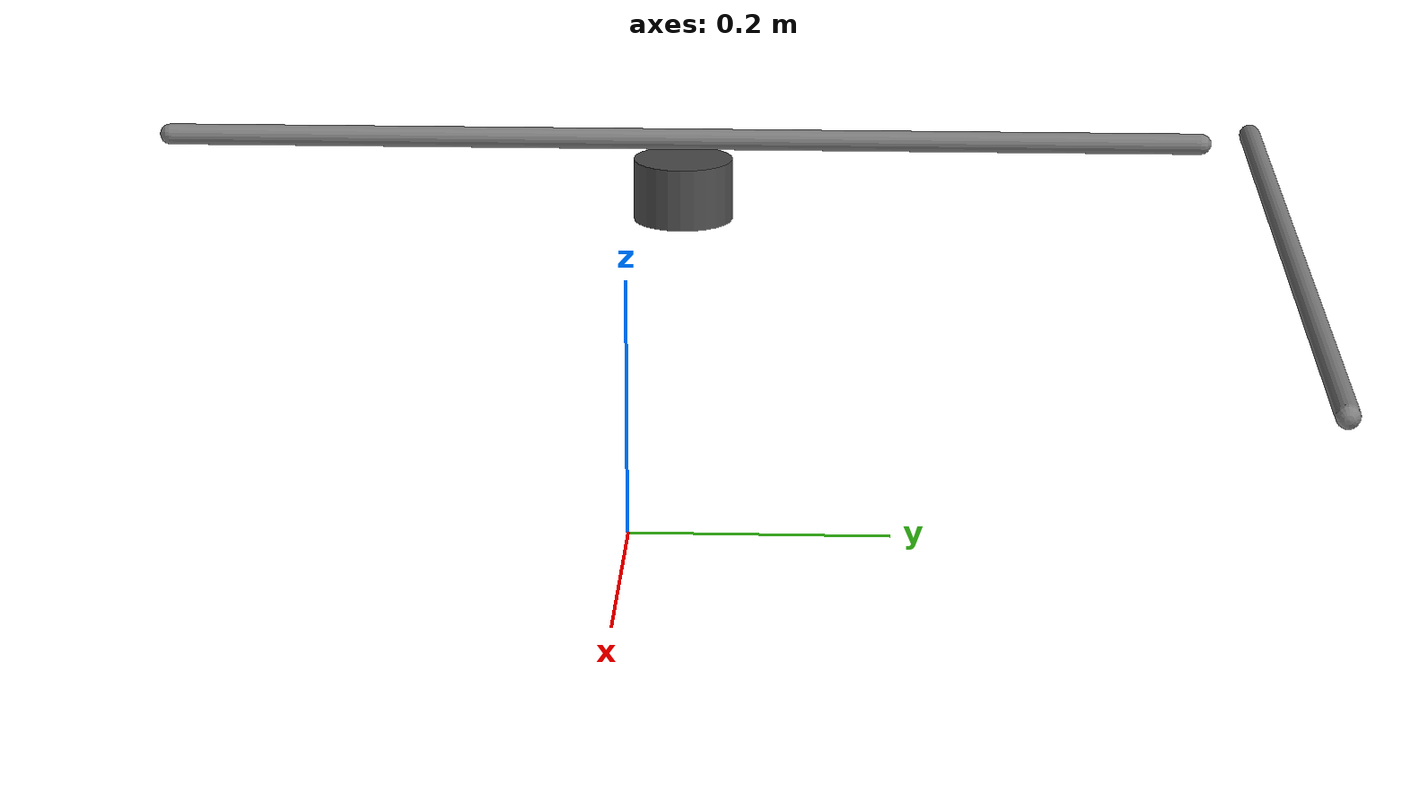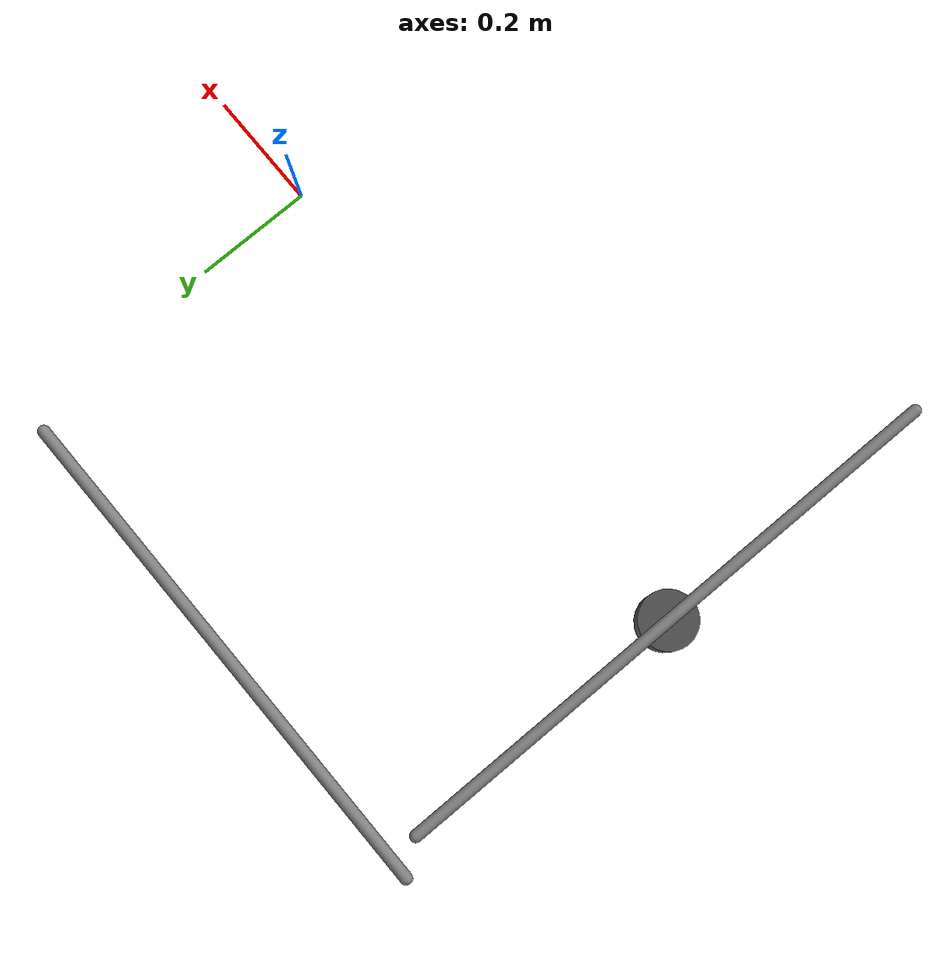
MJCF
<mujoco model="planar_robot_1">
    <compiler autolimits="true" angle="radian" meshdir="assets"/>
    <asset>
        <material name="dark_red" rgba="0.58 0.03 0.25 1"/>
        <material name="black" rgba="0.1 0.1 0.11 1"/>
        <mesh name="EE_mallet_foam" file="EE_mallet_foam.stl"/>
    </asset>
    <default>
        <default class="visual">
            <geom contype="0" conaffinity="0"/>
        </default>

        <default class="robot">
            <geom condim="4" solref="0.02 0.3" priority="2"/>
        </default>
        <default class="vis">
            <geom contype="0" conaffinity="0"/>
        </default>
    </default>

    <worldbody>
        <body name="custom_robot_1/body_1" pos="-0.5 0.55 0.08">
			<geom pos="0 0 0" quat="0.7071 0 0.7071 0" size="0.01 0.438" type="capsule" class="robot"/>
            <inertial pos="0 0 0" mass="0.01" diaginertia="0.05 0.018 0.044"/>
            <body name="custom_robot_1/body_2" pos="-0.40 -0.55 0">
			    <joint axis="1 0 0" limited="true" name="custom_robot_1/joint_1" pos="0 0 0" damping="0.005" range="0 1" type="slide"/>
                <inertial pos="0 0 0" mass="0.01" diaginertia="0.05 0.018 0.044"/>
                <geom pos="0 0 0" quat="0.7071 0.7071 0 0" size="0.01 0.500" type="capsule" class="robot"/>
				<body name="custom_robot_1/body_ee" pos="0 0 -0.1">
                    <joint axis="0 1 0" limited="true" name="custom_robot_1/joint_2" pos="0 0 0" damping="0.005" range="-0.45 0.45" type="slide"/>
                    <inertial pos="0 0 0" mass="0.1" diaginertia="0.0008 0.0023 0.0023"/>
                    <geom name="custom_robot_1/ee" solref="0.002 1" solimp="0.9 0.95 0.001 0.5 2" type="cylinder"  rgba="0.3 0.3 0.3 0.9"
                        size="0.04815 0.03" pos="0 0 0.0505" friction="0 0 0" class="robot"/>
                </body>
            </body>
		</body>
    </worldbody>

    <actuator>
        <position name="custom_robot_1/joint_1" joint="custom_robot_1/joint_1" ctrlrange="0 1" kp="10" kv="5"/>
        <position name="custom_robot_1/joint_2" joint="custom_robot_1/joint_2" ctrlrange="-0.45 0.45" kp="10" kv="5"/>
    </actuator>
</mujoco>
